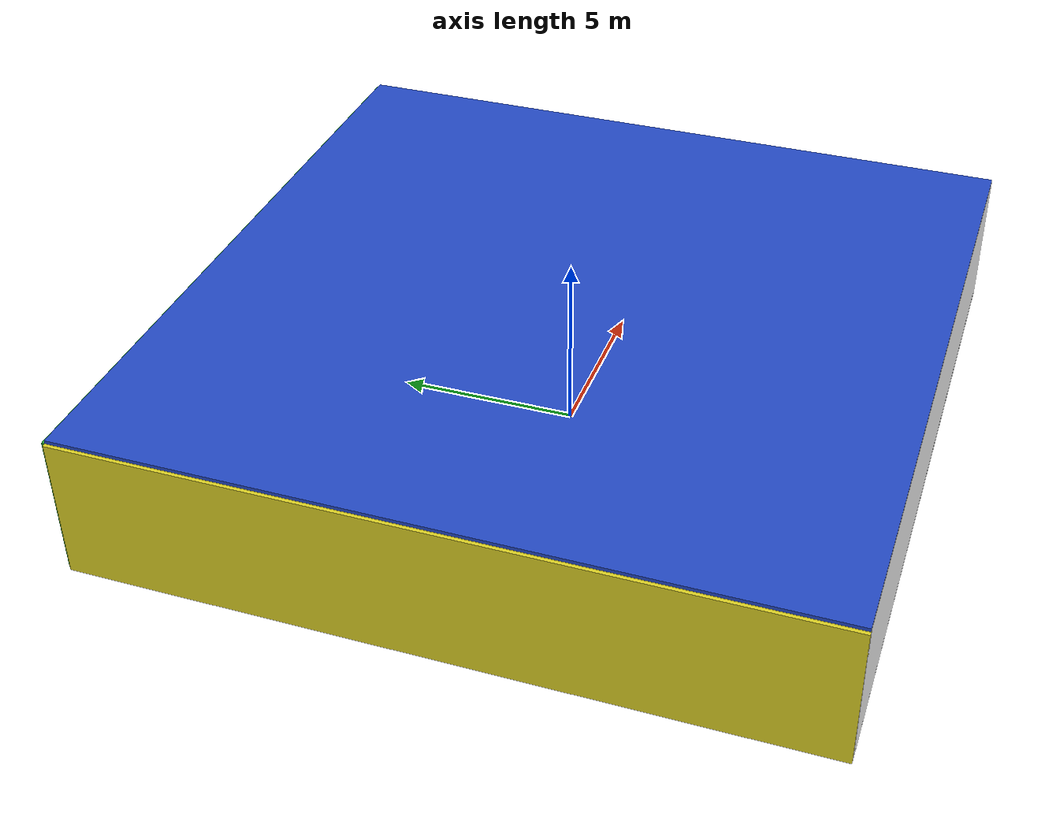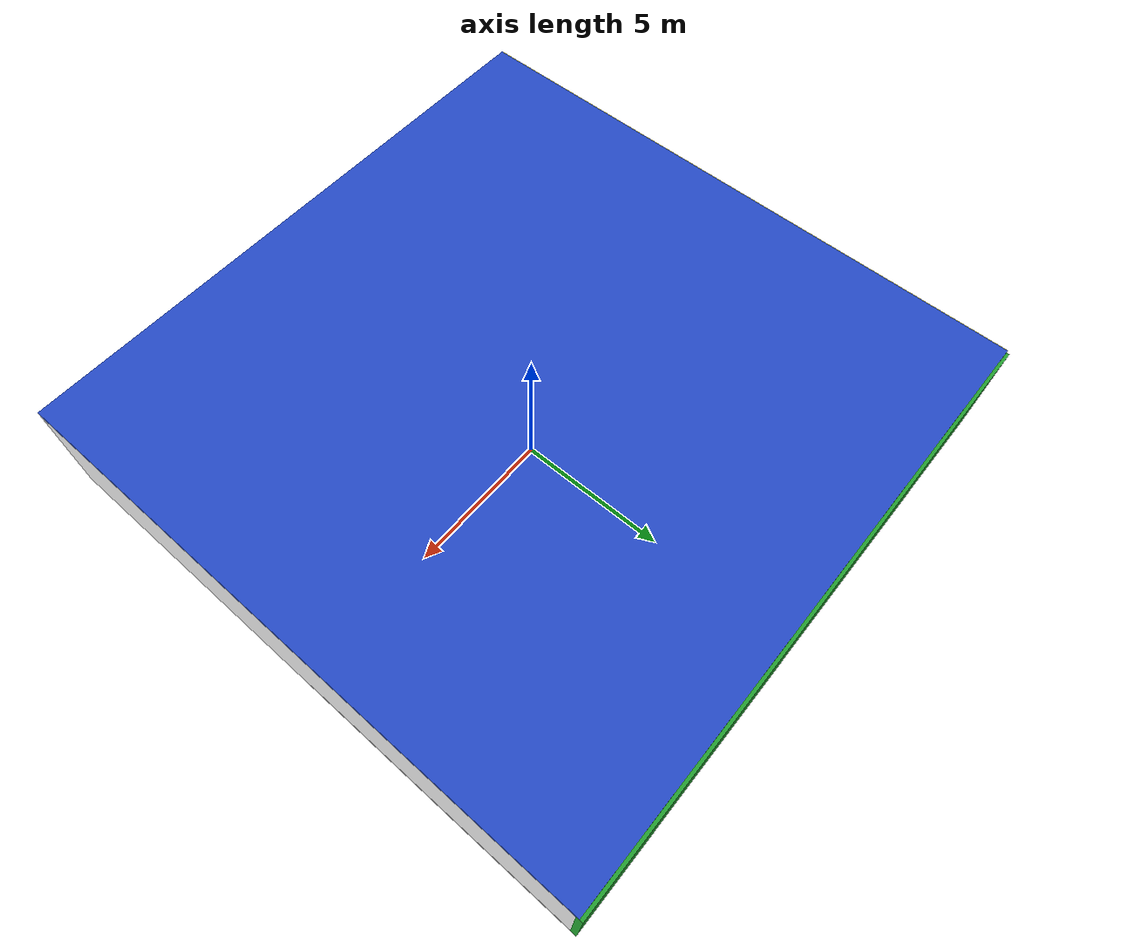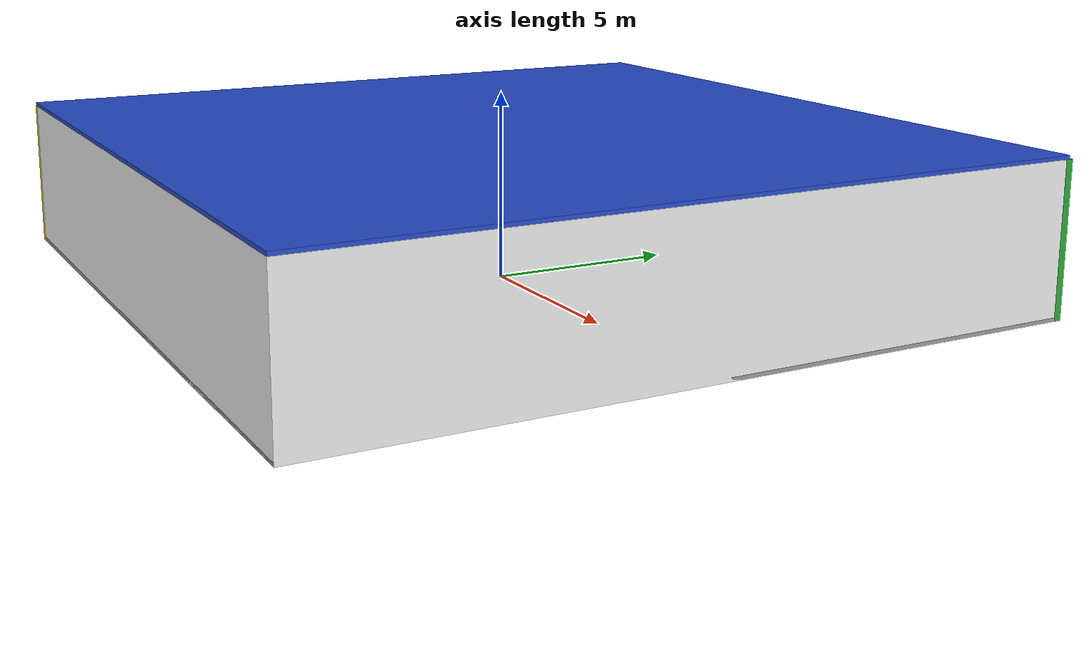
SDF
<sdf version="1.4">
 <world name="default">
  <physics type="ode">
   <max_step_size>0.001</max_step_size>
   <real_time_factor>1</real_time_factor>
   <real_time_update_rate>1000</real_time_update_rate>
   <gravity>0 0 -9.8</gravity>
  </physics>
  <scene><ambient>0.4 0.4 0.4 1</ambient><background>0.7 0.7 0.7 1</background><shadows>1</shadows></scene>
  <model name="Surrounding">
   <static>1</static>
   <link name="Ceiling">
    <collision name="Ceiling_Collision"><geometry><box><size>20 20 0.1</size></box></geometry></collision>
    <visual name="Ceiling_Visual">
     <geometry><box><size>20 20 0.1</size></box></geometry>
     <material>
      <script><uri>file://media/materials/scripts/gazebo.material</uri><name>Gazebo/BlueGlow</name></script>
     </material>
    </visual>
    <pose>0 0 4.05 0 0 0</pose>
   </link>
   <link name="Wall_South">
    <collision name="Wall_South_Collision">
     <geometry><box><size>20 0 4</size></box></geometry>
     <pose>0 0 2 0 -0 0</pose>
    </collision>
    <visual name="Wall_South_Visual">
     <pose>0 0 2 0 -0 0</pose>
     <geometry><box><size>20 0 4</size></box></geometry>
     <material>
      <script><uri>file://media/materials/scripts/gazebo.material</uri><name>Gazebo/White</name></script>
     </material>
    </visual>
    <velocity_decay><linear>0</linear><angular>0</angular></velocity_decay>
    <pose>0 -10 0 0 -0 0</pose>
   </link>
   <link name="Wall_East">
    <collision name="Wall_21_Collision">
     <geometry><box><size>20 0 4</size></box></geometry>
     <pose>0 0 2 0 -0 0</pose>
    </collision>
    <visual name="Wall_21_Visual">
     <pose>0 0 2 0 -0 0</pose>
     <geometry><box><size>20 0 4</size></box></geometry>
     <material>
      <script><uri>file://media/materials/scripts/gazebo.material</uri><name>Gazebo/White</name></script>
     </material>
    </visual>
    <velocity_decay><linear>0</linear><angular>0</angular></velocity_decay>
    <pose>10 0 0 0 -0 1.5708</pose>
   </link>
   <link name="Wall_North">
    <collision name="Wall_22_Collision">
     <geometry><box><size>20 0.2 4</size></box></geometry>
     <pose>0 0 2 0 -0 0</pose>
    </collision>
    <visual name="Wall_22_Visual">
     <pose>0 0 2 0 -0 0</pose>
     <geometry><box><size>20 0.2 4</size></box></geometry>
     <material>
      <script><uri>file://media/materials/scripts/gazebo.material</uri><name>Gazebo/GreenGlow</name></script>
     </material>
    </visual>
    <velocity_decay><linear>0</linear><angular>0</angular></velocity_decay>
    <pose>0 10 0 0 -0 0</pose>
   </link>
   <link name="Wall_West">
    <collision name="Wall_23_Collision">
     <geometry><box><size>20 0.2 4</size></box></geometry>
     <pose>0 0 2 0 -0 0</pose>
    </collision>
    <visual name="Wall_23_Visual">
     <pose>0 0 2 0 -0 0</pose>
     <geometry><box><size>20 0.2 4</size></box></geometry>
     <material>
      <script><uri>file://media/materials/scripts/gazebo.material</uri><name>Gazebo/Yellow</name></script>
     </material>
    </visual>
    <velocity_decay><linear>0</linear><angular>0</angular></velocity_decay>
    <pose>-10 0 0 0 0 -1.5708</pose>
   </link>
   <link name="Ground_link">
    <collision name="collision">
     <pose>0 0 .05 0 -0 0</pose>
     <geometry><box><size>20 20 0.1</size></box></geometry>
    </collision>
    <visual name="visual">
     <pose>0 0 .05 0 -0 0</pose>
     <geometry><box><size>20 20 0.1</size></box></geometry>
     <material>
      <script><uri>file://media/materials/scripts/gazebo.material</uri><name>Gazebo/Grey</name></script>
     </material>
    </visual>
   </link>
   <static>1</static>
  </model>
  <spherical_coordinates>
   <surface_model>EARTH_WGS84</surface_model>
   <latitude_deg>0</latitude_deg>
   <longitude_deg>0</longitude_deg>
   <elevation>0</elevation>
   <heading_deg>0</heading_deg>
  </spherical_coordinates>
  <light name="lightball_0" type="diffuse">
   <diffuse>0.8 0.8 0.8 1</diffuse>
   <specular>0.2 0.2 0.2 1</specular>
   <attenuation>
    <range>100</range>
    <constant>0.7</constant>
    <linear>0.01</linear>
    <quadratic>0.001</quadratic>
   </attenuation>
   <direction>-0.5 0.1 -0.9</direction>
   <pose>-0.624626504899 6.80481571598 3.63373049405 0 0 0</pose>
  </light>
  <light name="lightball_1" type="diffuse">
   <diffuse>0.8 0.8 0.8 1</diffuse>
   <specular>0.2 0.2 0.2 1</specular>
   <attenuation>
    <range>100</range>
    <constant>0.7</constant>
    <linear>0.01</linear>
    <quadratic>0.001</quadratic>
   </attenuation>
   <direction>-0.5 0.1 -0.9</direction>
   <pose>-7.41618059481 5.85370345667 2.08048714438 0 0 0</pose>
  </light>
  <light name="lightball_2" type="diffuse">
   <diffuse>0.8 0.8 0.8 1</diffuse>
   <specular>0.2 0.2 0.2 1</specular>
   <attenuation>
    <range>100</range>
    <constant>0.7</constant>
    <linear>0.01</linear>
    <quadratic>0.001</quadratic>
   </attenuation>
   <direction>-0.5 0.1 -0.9</direction>
   <pose>3.98503851397 -3.70828368358 0.74972487719 0 0 0</pose>
  </light>
  <light name="lightball_3" type="diffuse">
   <diffuse>0.8 0.8 0.8 1</diffuse>
   <specular>0.2 0.2 0.2 1</specular>
   <attenuation>
    <range>100</range>
    <constant>0.7</constant>
    <linear>0.01</linear>
    <quadratic>0.001</quadratic>
   </attenuation>
   <direction>-0.5 0.1 -0.9</direction>
   <pose>-4.19013611631 4.12467990496 2.7367359459 0 0 0</pose>
  </light>
  <light name="lightball_4" type="diffuse">
   <diffuse>0.8 0.8 0.8 1</diffuse>
   <specular>0.2 0.2 0.2 1</specular>
   <attenuation>
    <range>100</range>
    <constant>0.7</constant>
    <linear>0.01</linear>
    <quadratic>0.001</quadratic>
   </attenuation>
   <direction>-0.5 0.1 -0.9</direction>
   <pose>-5.72989110008 7.90004245827 2.39236473539 0 0 0</pose>
  </light>
  <light name="lightball_5" type="diffuse">
   <diffuse>0.8 0.8 0.8 1</diffuse>
   <specular>0.2 0.2 0.2 1</specular>
   <attenuation>
    <range>100</range>
    <constant>0.7</constant>
    <linear>0.01</linear>
    <quadratic>0.001</quadratic>
   </attenuation>
   <direction>-0.5 0.1 -0.9</direction>
   <pose>-9.41504615448 -2.69606999958 1.77674348525 0 0 0</pose>
  </light>
  <light name="lightball_6" type="diffuse">
   <diffuse>0.8 0.8 0.8 1</diffuse>
   <specular>0.2 0.2 0.2 1</specular>
   <attenuation>
    <range>100</range>
    <constant>0.7</constant>
    <linear>0.01</linear>
    <quadratic>0.001</quadratic>
   </attenuation>
   <direction>-0.5 0.1 -0.9</direction>
   <pose>8.27974847751 3.13644494597 0.674510894928 0 0 0</pose>
  </light>
  <light name="lightball_7" type="diffuse">
   <diffuse>0.8 0.8 0.8 1</diffuse>
   <specular>0.2 0.2 0.2 1</specular>
   <attenuation>
    <range>100</range>
    <constant>0.7</constant>
    <linear>0.01</linear>
    <quadratic>0.001</quadratic>
   </attenuation>
   <direction>-0.5 0.1 -0.9</direction>
   <pose>-5.04635738772 6.64364534889 1.69624711083 0 0 0</pose>
  </light>
  <light name="lightball_8" type="diffuse">
   <diffuse>0.8 0.8 0.8 1</diffuse>
   <specular>0.2 0.2 0.2 1</specular>
   <attenuation>
    <range>100</range>
    <constant>0.7</constant>
    <linear>0.01</linear>
    <quadratic>0.001</quadratic>
   </attenuation>
   <direction>-0.5 0.1 -0.9</direction>
   <pose>1.07444170622 -2.70580087364 2.77956590251 0 0 0</pose>
  </light>
  <light name="lightball_9" type="diffuse">
   <diffuse>0.8 0.8 0.8 1</diffuse>
   <specular>0.2 0.2 0.2 1</specular>
   <attenuation>
    <range>100</range>
    <constant>0.7</constant>
    <linear>0.01</linear>
    <quadratic>0.001</quadratic>
   </attenuation>
   <direction>-0.5 0.1 -0.9</direction>
   <pose>-1.00930574562 -8.78986371575 3.71226510872 0 0 0</pose>
  </light>
  <light name="lightball_10" type="diffuse">
   <diffuse>0.8 0.8 0.8 1</diffuse>
   <specular>0.2 0.2 0.2 1</specular>
   <attenuation>
    <range>100</range>
    <constant>0.7</constant>
    <linear>0.01</linear>
    <quadratic>0.001</quadratic>
   </attenuation>
   <direction>-0.5 0.1 -0.9</direction>
   <pose>2.01526075975 -7.00537638927 3.01601698784 0 0 0</pose>
  </light>
  <include><uri>model://cabinet</uri><pose>-6.71020442098 -4.91910962961 0 0 0 0.0178469019547</pose></include>
  <include>
   <uri>model://construction_cone</uri>
   <pose>-7.61177614642 -2.6210146065 0 0 0 2.55631560688</pose>
  </include>
  <include>
   <uri>model://construction_cone</uri>
   <pose>-8.36084736022 1.5196407954 0 0 0 1.27107413782</pose>
  </include>
  <include>
   <uri>model://robocup_3Dsim_goal</uri>
   <pose>-5.55131679384 -5.38197937496 0 0 0 1.66471955398</pose>
  </include>
  <include><uri>model://cabinet</uri><pose>-5.69261458127 0.520453552988 0 0 0 1.24515845569</pose></include>
  <include><uri>model://cabinet</uri><pose>-3.69405127684 7.08032141668 0 0 0 2.70875554157</pose></include>
  <include>
   <uri>model://robocup_3Dsim_goal</uri>
   <pose>-0.344475868797 1.52713634935 0 0 0 1.61237820037</pose>
  </include>
  <include>
   <uri>model://textured_shapes</uri>
   <pose>3.94085388447 -0.76826391981 0 0 0 2.6638407326</pose>
  </include>
  <include><uri>model://cabinet</uri><pose>3.47626871382 1.51680136515 0 0 0 2.59840919644</pose></include>
 </world>
</sdf>

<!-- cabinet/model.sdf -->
<sdf version="1.5">
  <model name="cabinet">
    <static>true</static>
    <link name="cabinet_bottom_plate">
      <inertial>
        <pose>0 0 -1 0 0 0</pose>
        <inertia>
          <ixx>2.050000</ixx>
          <ixy>0</ixy>
          <ixz>0</ixz>
          <iyy>2.050000</iyy>
          <iyz>0</iyz>
          <izz>2.050000</izz>
        </inertia>
        <mass>25.000000</mass>
      </inertial>
      <collision name="cabinet_bottom_plate_geom">
        <pose>0 0 0.010000 0 0 0</pose>
        <geometry>
          <box>
            <size>0.450000 0.450000 0.020000</size>
          </box>
        </geometry>
      </collision>
      <visual name="cabinet_bottom_plate_geom_visual">
        <pose>0 0 0.010000 0 0 0</pose>
        <geometry>
          <box>
            <size>0.450000 0.450000 0.020000</size>
          </box>
        </geometry>
        <material>
          <script>
            <uri>model://media/materials/scripts/gazebo.material</uri>
            <name>Gazebo/Wood</name>
          </script>
        </material>
      </visual>
      <collision name="cabinet_bottom_plate_geom_cabinet_back_plate">
        <pose>0.235000 0 0.510000 0 0 0</pose>
        <geometry>
          <box>
            <size>0.020000 0.450000 1.020000</size>
          </box>
        </geometry>
      </collision>
      <visual name="cabinet_bottom_plate_geom_cabinet_back_plate_visual">
        <pose>0.235000 0 0.510000 0 0 0</pose>
        <geometry>
          <box>
            <size>0.020000 0.450000 1.020000</size>
          </box>
        </geometry>
        <material>
          <script>
            <uri>model://media/materials/scripts/gazebo.material</uri>
            <name>Gazebo/Wood</name>
          </script>
        </material>
      </visual>
      <collision name="cabinet_bottom_plate_geom_cabinet_left_plate">
        <pose>0 0.235000 0.510000 0 0 0</pose>
        <geometry>
          <box>
            <size>0.450000 0.020000 1.020000</size>
          </box>
        </geometry>
      </collision>
      <visual name="cabinet_bottom_plate_geom_cabinet_left_plate_visual">
        <pose>0 0.235000 0.510000 0 0 0</pose>
        <geometry>
          <box>
            <size>0.450000 0.020000 1.020000</size>
          </box>
        </geometry>
        <material>
          <script>
            <uri>model://media/materials/scripts/gazebo.material</uri>
            <name>Gazebo/Wood</name>
          </script>
        </material>
      </visual>
      <collision name="cabinet_bottom_plate_geom_cabinet_middle_plate">
        <pose>0 0 0.510000 0 0 0</pose>
        <geometry>
          <box>
            <size>0.450000 0.450000 0.020000</size>
          </box>
        </geometry>
      </collision>
      <visual name="cabinet_bottom_plate_geom_cabinet_middle_plate_visual">
        <pose>0 0 0.510000 0 0 0</pose>
        <geometry>
          <box>
            <size>0.450000 0.450000 0.020000</size>
          </box>
        </geometry>
        <material>
          <script>
            <uri>model://media/materials/scripts/gazebo.material</uri>
            <name>Gazebo/Wood</name>
          </script>
        </material>
      </visual>
      <collision name="cabinet_bottom_plate_geom_cabinet_right_plate">
        <pose>0 -0.235000 0.510000 0 0 0</pose>
        <geometry>
          <box>
            <size>0.450000 0.020000 1.020000</size>
          </box>
        </geometry>
      </collision>
      <visual name="cabinet_bottom_plate_geom_cabinet_right_plate_visual">
        <pose>0 -0.235000 0.510000 0 0 0</pose>
        <geometry>
          <box>
            <size>0.450000 0.020000 1.020000</size>
          </box>
        </geometry>
        <material>
          <script>
            <uri>model://media/materials/scripts/gazebo.material</uri>
            <name>Gazebo/Wood</name>
          </script>
        </material>
      </visual>
      <collision name="cabinet_bottom_plate_geom_cabinet_top_plate">
        <pose>0 0 1.010000 0 0 0</pose>
        <geometry>
          <box>
            <size>0.450000 0.450000 0.020000</size>
          </box>
        </geometry>
      </collision>
      <visual name="cabinet_bottom_plate_geom_cabinet_top_plate_visual">
        <pose>0 0 1.010000 0 0 0</pose>
        <geometry>
          <box>
            <size>0.450000 0.450000 0.020000</size>
          </box>
        </geometry>
        <material>
          <script>
            <uri>model://media/materials/scripts/gazebo.material</uri>
            <name>Gazebo/Wood</name>
          </script>
        </material>
      </visual>
    </link>
  </model>
</sdf>

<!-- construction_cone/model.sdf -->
<sdf version="1.5">
  <model name="Construction Cone">
    <link name="link">
      <collision name="collision">
        <geometry>
          <mesh>
            <scale>10 10 10</scale>
            <uri>file://isr-testbed/construction_cone/meshes/construction_cone.dae</uri>
          </mesh>
        </geometry>
      </collision>
      <visual name="visual">
        <geometry>
          <mesh>
            <scale>10 10 10</scale>
            <uri>file://isr-testbed/construction_cone/meshes/construction_cone.dae</uri>
          </mesh>
        </geometry>
      </visual>
    </link>
  </model>
</sdf>

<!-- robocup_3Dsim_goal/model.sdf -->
<sdf version="1.5">
  <model name="robocup_3d_goal">
    <static>true</static>
    <link name="left_post">
      <pose>0 1.05 0.45 0 0 0</pose>
      <collision name="collision">
        <geometry>
          <cylinder>
            <radius>0.05</radius>
            <length>0.9</length>
          </cylinder>
        </geometry>
      </collision>
      <visual name="visual">
        <geometry>
          <cylinder>
            <radius>0.05</radius>
            <length>0.9</length>
          </cylinder>
        </geometry>
        <material>
          <script>
            <uri>file://media/materials/scripts/gazebo.material</uri>
            <name>Gazebo/ZincYellow</name>
          </script>
        </material>
      </visual>
    </link>
    <link name="left_support_horiz_lower">
      <pose>0.30 1.05 0.01 0 0 0</pose>
      <collision name="collision">
        <geometry>
          <box>
            <size>0.50 0.02 0.02</size>
          </box>
        </geometry>
      </collision>
      <visual name="visual">
        <geometry>
          <box>
            <size>0.50 0.02 0.02</size>
          </box>
        </geometry>
        <material>
          <script>
            <uri>file://media/materials/scripts/gazebo.material</uri>
            <name>Gazebo/White</name>
          </script>
        </material>
      </visual>
    </link>
    <link name="left_support_horiz_upper">
      <pose>0.30 1.05 0.79 0 0 0</pose>
      <collision name="collision">
        <geometry>
          <box>
            <size>0.50 0.02 0.02</size>
          </box>
        </geometry>
      </collision>
      <visual name="visual">
        <geometry>
          <box>
            <size>0.50 0.02 0.02</size>
          </box>
        </geometry>
        <material>
          <script>
            <uri>file://media/materials/scripts/gazebo.material</uri>
            <name>Gazebo/White</name>
          </script>
        </material>
      </visual>
    </link>
    <link name="left_support_vertical">
      <pose>0.56 1.05 0.4 0 1.5708 0</pose>
      <collision name="collision">
        <geometry>
          <box>
            <size>0.80 0.02 0.02</size>
          </box>
        </geometry>
      </collision>
      <visual name="visual">
        <geometry>
          <box>
            <size>0.80 0.02 0.02</size>
          </box>
        </geometry>
        <material>
          <script>
            <uri>file://media/materials/scripts/gazebo.material</uri>
            <name>Gazebo/White</name>
          </script>
        </material>
      </visual>
    </link>
    <link name="right_support_horiz_lower">
      <pose>0.30 -1.05 0.01 0 0 0</pose>
      <collision name="collision">
        <geometry>
          <box>
            <size>0.50 0.02 0.02</size>
          </box>
        </geometry>
      </collision>
      <visual name="visual">
        <geometry>
          <box>
            <size>0.50 0.02 0.02</size>
          </box>
        </geometry>
        <material>
          <script>
            <uri>file://media/materials/scripts/gazebo.material</uri>
            <name>Gazebo/White</name>
          </script>
        </material>
      </visual>
    </link>
    <link name="right_support_horiz_upper">
      <pose>0.30 -1.05 0.79 0 0 0</pose>
      <collision name="collision">
        <geometry>
          <box>
            <size>0.50 0.02 0.02</size>
          </box>
        </geometry>
      </collision>
      <visual name="visual">
        <geometry>
          <box>
            <size>0.50 0.02 0.02</size>
          </box>
        </geometry>
        <material>
          <script>
            <uri>file://media/materials/scripts/gazebo.material</uri>
            <name>Gazebo/White</name>
          </script>
        </material>
      </visual>
    </link>
    <link name="right_support_vertical">
      <pose>0.56 -1.05 0.4 0 1.5708 0</pose>
      <collision name="collision">
        <geometry>
          <box>
            <size>0.80 0.02 0.02</size>
          </box>
        </geometry>
      </collision>
      <visual name="visual">
        <geometry>
          <box>
            <size>0.80 0.02 0.02</size>
          </box>
        </geometry>
        <material>
          <script>
            <uri>file://media/materials/scripts/gazebo.material</uri>
            <name>Gazebo/White</name>
          </script>
        </material>
      </visual>
    </link>
    <link name="center_support_horiz_lower">
      <pose>0.56 0 0.01 0 1.5708 0</pose>
      <collision name="collision">
        <geometry>
          <box>
            <size>0.02 2.08 0.02</size>
          </box>
        </geometry>
      </collision>
      <visual name="visual">
        <geometry>
          <box>
            <size>0.02 2.08 0.02</size>
          </box>
        </geometry>
        <material>
          <script>
            <uri>file://media/materials/scripts/gazebo.material</uri>
            <name>Gazebo/White</name>
          </script>
        </material>
      </visual>
    </link>
    <link name="center_support_horiz_upper">
      <pose>0.56 0 0.79 0 1.5708 0</pose>
      <collision name="collision">
        <geometry>
          <box>
            <size>0.02 2.08 0.02</size>
          </box>
        </geometry>
      </collision>
      <visual name="visual">
        <geometry>
          <box>
            <size>0.02 2.08 0.02</size>
          </box>
        </geometry>
        <material>
          <script>
            <uri>file://media/materials/scripts/gazebo.material</uri>
            <name>Gazebo/White</name>
          </script>
        </material>
      </visual>
    </link>
    <link name="right_post">
      <pose>0 -1.05 0.45 0 0 0</pose>
      <collision name="collision">
        <geometry>
          <cylinder>
            <radius>0.05</radius>
            <length>0.9</length>
          </cylinder>
        </geometry>
      </collision>
      <visual name="visual">
        <geometry>
          <cylinder>
            <radius>0.05</radius>
            <length>0.9</length>
          </cylinder>
        </geometry>
        <material>
          <script>
            <uri>file://media/materials/scripts/gazebo.material</uri>
            <name>Gazebo/ZincYellow</name>
          </script>
        </material>
      </visual>
    </link>
    <link name="crossbar">
      <pose>0 0 0.85 1.57 1.57 0</pose>
      <collision name="collision">
        <geometry>
          <cylinder>
            <radius>0.05</radius>
            <length>2.0</length>
          </cylinder>
        </geometry>
      </collision>
      <visual name="visual">
        <geometry>
          <cylinder>
            <radius>0.05</radius>
            <length>2.0</length>
          </cylinder>
        </geometry>
        <material>
          <script>
            <uri>file://media/materials/scripts/gazebo.material</uri>
            <name>Gazebo/ZincYellow</name>
          </script>
        </material>
      </visual>
    </link>
    <link name="center_net">
      <pose>0.56 0 0.40 0 0 0</pose>
      <collision name="collision">
        <geometry>
          <box>
            <size>0.01 2.1 0.80</size>
          </box>
        </geometry>
      </collision>
      <visual name="visual">
        <geometry>
          <box>
            <size>0.01 2.1 0.80</size>
          </box>
        </geometry>
        <material>
          <script>
            <uri>model://../model_source/models/robocup09_spl_field/materials/scripts/</uri>
            <uri>model://../model_source/models/robocup09_spl_field/materials/textures/</uri>
            <name>RoboCup/Net</name>
          </script>
        </material>
      </visual>
    </link>
    <link name="left_net">
      <pose>0.30 1.05 0.40 0 0 0</pose>
      <collision name="collision">
        <geometry>
          <box>
            <size>0.50 0.01 0.76</size>
          </box>
        </geometry>
      </collision>
      <visual name="visual">
        <geometry>
          <box>
            <size>0.50 0.01 0.76</size>
          </box>
        </geometry>
        <material>
          <script>
            <uri>model://../model_source/models/robocup09_spl_field/materials/scripts/</uri>
            <uri>model://../model_source/models/robocup09_spl_field/materials/textures/</uri>
            <name>RoboCup/Net</name>
          </script>
        </material>
      </visual>
    </link>
    <link name="right_net">
      <pose>0.30 -1.05 0.40 0 0 0</pose>
      <collision name="collision">
        <geometry>
          <box>
            <size>0.50 0.01 0.76</size>
          </box>
        </geometry>
      </collision>
      <visual name="visual">
        <geometry>
          <box>
            <size>0.50 0.01 0.76</size>
          </box>
        </geometry>
        <material>
          <script>
            <uri>model://../model_source/models/robocup09_spl_field/materials/scripts/</uri>
            <uri>model://../model_source/models/robocup09_spl_field/materials/textures/</uri>
            <name>RoboCup/Net</name>
          </script>
        </material>
      </visual>
    </link>
  </model>
</sdf>

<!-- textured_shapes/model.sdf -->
<sdf version="1.6">
  <model name="textured_shapes">
    <pose>0 0 0.5 0 0 0</pose>
    <link name="box">
      <pose>0 -1.5 0 0 0 0</pose>
      <collision name="collision">
        <geometry>
          <box>
            <size>1 1 1</size>
          </box>
        </geometry>
      </collision>
      <visual name="visual">
        <geometry>
          <box>
            <size>1 1 1</size>
          </box>
        </geometry>
        <material>
          <script>
            <uri>model://../model_source/models/textured_shapes/materials/scripts</uri>
            <uri>model://../model_source/models/textured_shapes/materials/textures</uri>
            <name>TexturedShape/Squares</name>
          </script>
        </material>
      </visual>
    </link>
    <link name="sphere">
      <collision name="collision">
        <geometry>
          <sphere>
            <radius>0.5</radius>
          </sphere>
        </geometry>
      </collision>
      <visual name="visual">
        <geometry>
          <sphere>
            <radius>0.5</radius>
          </sphere>
        </geometry>
        <material>
          <script>
            <uri>model://../model_source/models/textured_shapes/materials/scripts</uri>
            <uri>model://../model_source/models/textured_shapes/materials/textures</uri>
            <name>TexturedShape/Squares</name>
          </script>
        </material>
      </visual>
    </link>
    <link name="cylinder">
      <pose>0 1.5 0 0 0 0</pose>
      <collision name="collision">
        <geometry>
          <cylinder>
            <radius>0.5</radius>
            <length>1</length>
          </cylinder>
        </geometry>
      </collision>
      <visual name="visual">
        <geometry>
          <cylinder>
            <radius>0.5</radius>
            <length>1</length>
          </cylinder>
        </geometry>
        <material>
          <script>
            <uri>model://../model_source/models/textured_shapes/materials/scripts</uri>
            <uri>model://../model_source/models/textured_shapes/materials/textures</uri>
            <name>TexturedShape/Squares</name>
          </script>
        </material>
      </visual>
    </link>
  </model>
</sdf>
